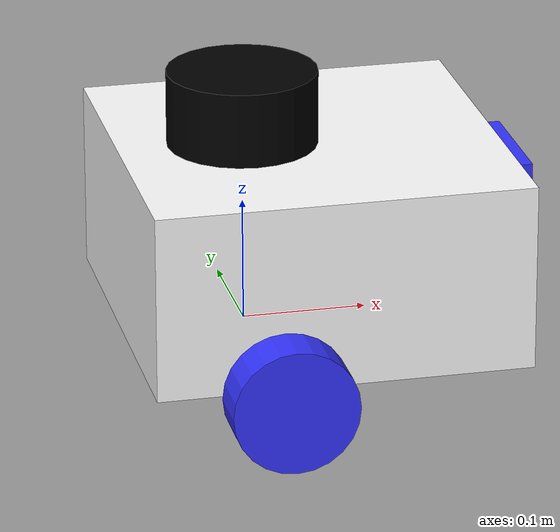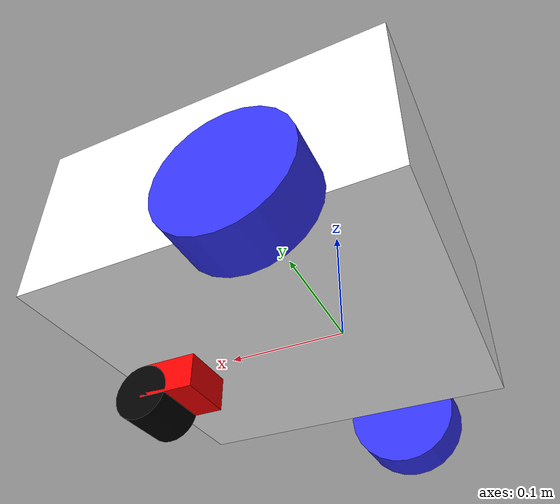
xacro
<?xml version="1.0"?>
<robot xmlns:xacro="http://www.ros.org/wiki/xacro">

    <xacro:include filename="inertial_macros.xacro"/>
    <xacro:include filename="$(find robot_simulation)/urdf/gazebo_control.gazebo"/>

    <material name="white">
        <color rgba="1 1 1 1" />
    </material>

    <material name="orange">
        <color rgba="1 0.3 0.1 1"/>
    </material>

    <material name="blue">
        <color rgba="0.2 0.2 1 1"/>
    </material>

    <material name="black">
        <color rgba="0 0 0 1"/>
    </material>

    <material name="red">
        <color rgba="1.0 0.0 0.0 1.0"/>
    </material>

    <!-- BASE LINK -->

    <link name="base_link">

    </link>

    <!-- CHASSIS LINK -->

    <joint name="chassis_joint" type="fixed">
        <parent link="base_link"/>
        <child link="chassis"/>
        <origin xyz="-0.1 0 0"/>
    </joint>

    <link name="chassis">
        <visual>
            <origin xyz="0.15 0 0.075"/>
            <geometry>
                <box size="0.3 0.3 0.15"/>
            </geometry>
            <material name="white"/>
        </visual>
        <collision>
            <origin xyz="0.15 0 0.075"/>
            <geometry>
                <box size="0.3 0.3 0.15"/>
            </geometry>
        </collision>
        <xacro:inertial_box mass="0.5" x="0.3" y="0.3" z="0.15">
            <origin xyz="0.15 0 0.075" rpy="0 0 0"/>
        </xacro:inertial_box>
    </link>

    <link name="left_wheel">
        <visual>
            <geometry>
                <cylinder radius="0.05" length="0.04"/>
            </geometry>
            <material name="blue"/>
        </visual>
        <collision>
            <geometry>
                <cylinder radius="0.05" length="0.04"/>
            </geometry>
        </collision>
        <xacro:inertial_cylinder mass="0.1" length="0.04" radius="0.05">
            <origin xyz="0 0 0" rpy="0 0 0"/>
        </xacro:inertial_cylinder>
    </link>

    <joint name="left_wheel_joint" type="continuous">
        <parent link="base_link"/>
        <child link="left_wheel"/>
        <origin xyz="0 0.175 0" rpy="-${pi/2} 0 0" />
        <axis xyz="0 0 1"/>
    </joint>

    <!-- RIGHT WHEEL LINK -->

    <link name="right_wheel">
        <visual>
            <geometry>
                <cylinder radius="0.05" length="0.04"/>
            </geometry>
            <material name="blue"/>
        </visual>
        <collision>
            <geometry>
                <cylinder radius="0.05" length="0.04"/>
            </geometry>
        </collision>
        <xacro:inertial_cylinder mass="0.1" length="0.04" radius="0.05">
            <origin xyz="0 0 0" rpy="0 0 0"/>
        </xacro:inertial_cylinder>
    </link>

    <joint name="right_wheel_joint" type="continuous">
        <parent link="base_link"/>
        <child link="right_wheel"/>
        <origin xyz="0 -0.175 0" rpy="${pi/2} 0 0" />
        <axis xyz="0 0 -1"/>
    </joint>

    <!-- CASTER WHEEL LINK -->

    <link name="front_caster_wheel_link">
        <visual >
            <geometry>
                <box size="0.05 0.05 0.05"/>
            </geometry>
            <material name="red"/>
        </visual>
        <collision>
            <geometry>
                <box size="0.05 0.05 0.05"/>
            </geometry>
        </collision>
        <xacro:inertial_box mass="0.1" x="0.1" y="0.1" z="0.1">
            <origin xyz="0.0 0 0.0" rpy="0 0 0"/>
        </xacro:inertial_box>

    </link>

    <joint name="front_caster_wheel_joint" type="continuous">
        <axis xyz="0.0 0.0 1"/>
        <parent link="base_link"/>
        <child link="front_caster_wheel_link"/>
        <origin xyz="0.15 0.0 -0.005" rpy="0.0 0.0 0.0"/>
    </joint>

    <link name="front_wheel_link">
        <visual>
            <geometry>
                <cylinder radius="0.025" length="0.05"/>
            </geometry>
            <material name="black">

            </material>

        </visual>
        <collision>
            <geometry>
                <cylinder radius="0.025" length="0.05"/>
            </geometry>
        </collision>

        <xacro:inertial_cylinder mass="0.1" length="0.05" radius="0.025">
            <origin xyz="0 0 0" rpy="0 0 0"/>
        </xacro:inertial_cylinder>
    </link>

    <joint name="front_wheel_joint" type="continuous">
        <axis xyz="0.0 0.0 1"/>
        <parent link="front_caster_wheel_link"/>
        <child link="front_wheel_link"/>
        <origin xyz="0.025 0.0 -0.02" rpy="-1.5708 0.0 0.0"/>
    </joint>

    <!-- Create A lidar Link -->
    <link name="lidar_link">
        <visual>
            <geometry>
                <cylinder radius="0.06" length="0.06"/>
            </geometry>
            <material name="black">
            </material>

        </visual>
        <collision>
            <geometry>
                <cylinder radius="0.06" length="0.06"/>
            </geometry>
        </collision>

        <xacro:inertial_cylinder mass="0.15" length="0.3" radius="0.4">
            <origin xyz="0 0 0" rpy="0 0 0"/>
        </xacro:inertial_cylinder>
    </link>

    <joint name="lidar_joint" type="fixed">
        <axis xyz="0.0 0 1"/>
        <parent link="base_link"/>
        <child link="lidar_link"/>
        <origin xyz="0.0 0.0 0.18" rpy="0 0.0 0"/>
    </joint>

    <!-- create camera link -->
     <link name="camera_link">
        <visual>
            <geometry>
                <box size="0.1 0.02 0.028"/>
            </geometry>
            <material name="blue">
            </material>

        </visual>
        <collision>
            <geometry>
               <box size="0.1 0.02 0.028"/>
            </geometry>
        </collision>

        <xacro:inertial_box   mass="0.01" x="0.02" y="0.1" z="0.28">
            <origin xyz="0 0 0" rpy="0 0 0"/>
        </xacro:inertial_box>
    </link>

    <joint name="camera_joint" type="fixed">
        <axis xyz="0.0 0 1"/>
        <parent link="chassis"/>
        <child link="camera_link"/>
        <origin xyz="0.31 0.0 0.12" rpy="${-pi/2} 0.0 ${-pi/2}"/>
    </joint>

</robot>
